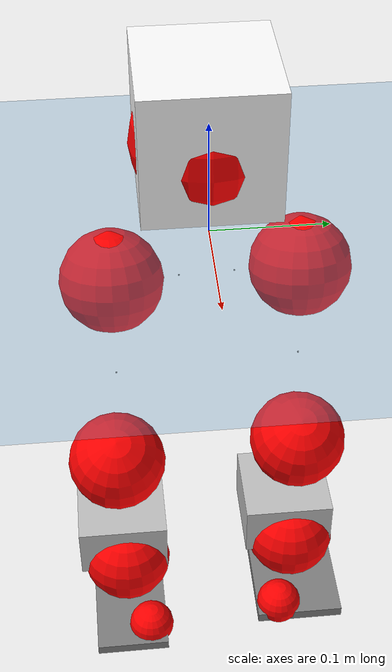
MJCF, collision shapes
<mujoco model="pi_12dof_release_v1">
  <compiler angle="radian" assetdir="assets" balanceinertia="true" inertiafromgeom="false"/>

  <option timestep="0.005" density="1.2" viscosity="2e-05"/>

  <size nkey="1"/>

  <visual>
    <quality shadowsize="8192"/>
    <map shadowclip="0.5"/>
  </visual>

  <default>
    <default class="/">
      <joint armature="0.01" damping="0.01" frictionloss="0.01"/>
      <geom contype="0" conaffinity="0" group="1" solref="-1000 -80"/>
      <site size="0.01 0.005 0.005" group="5"/>
      <general forcelimited="true" biastype="affine" gainprm="20" biasprm="0 -20 -0.5"/>
      <default class="foot">
        <geom size="0.0845 0.036 0.005" type="box" condim="6" group="4" priority="1" friction="0.9 0.2 0.2" solimp="0.015 1 0.005"/>
      </default>
      <default class="reward_collision_sphere">
        <geom group="5" rgba="1 0 0 1"/>
      </default>
    </default>
  </default>

  <asset>
    <texture type="skybox" colorspace="auto" name="//unnamed_texture_0" builtin="gradient" rgb1="0.95 0.95 0.95" rgb2="0.95 0.95 0.95" width="100" height="600"/>
    <texture type="2d" colorspace="auto" name="texplane" builtin="checker" rgb1="0.345 0.575 0.748" rgb2="0.345 0.575 0.748" markrgb="1 1 1" width="512" height="512"/>
    <material name="MatPlane" class="/" texture="texplane" texuniform="true" texrepeat="2 2" specular="0.9"/>
    <mesh name="baselink_1" class="/" file="baselink_1.STL"/>
    <mesh name="r_hip_pitch_link" class="/" file="r_hip_pitch_link.STL"/>
    <mesh name="r_hip_roll_link" class="/" file="r_hip_roll_link.STL"/>
    <mesh name="r_thigh_link" class="/" file="r_thigh_link.STL"/>
    <mesh name="r_calf_link" class="/" file="r_calf_link.STL"/>
    <mesh name="r_ankle_pitch_link" class="/" file="r_ankle_pitch_link.STL"/>
    <mesh name="r_ankle_roll_link" class="/" file="r_ankle_roll_link.STL"/>
    <mesh name="l_hip_pitch_link" class="/" file="l_hip_pitch_link.STL"/>
    <mesh name="l_hip_roll_link" class="/" file="l_hip_roll_link.STL"/>
    <mesh name="l_thigh_link" class="/" file="l_thigh_link.STL"/>
    <mesh name="l_calf_link" class="/" file="l_calf_link.STL"/>
    <mesh name="l_ankle_pitch_link" class="/" file="l_ankle_pitch_link.STL"/>
    <mesh name="l_ankle_roll_link" class="/" file="l_ankle_roll_link.STL"/>
  </asset>

  <worldbody>
    <geom name="floor" class="/" size="100 100 0.125" type="plane" group="0" material="MatPlane"/>
    <light name="toplight_shadow" class="/" pos="0 0 5" dir="0.0990148 0.0990148 -0.990148" type="directional" ambient="0.04 0.04 0.04" diffuse="0.55 0.55 0.55" specular="0.12 0.12 0.12"/>
    <light name="toplight_fill" class="/" pos="0 0 5" dir="0.0990148 0.0990148 -0.990148" type="directional" castshadow="false" ambient="0.04 0.04 0.04" diffuse="0.3 0.3 0.3" specular="0.08 0.08 0.08"/>
    <body name="trunk" pos="-0.000514927 -0.00236944 -0.000964257" quat="1 2.79129e-05 2.52123e-05 -5.33002e-05">
      <inertial pos="0.0043227 -0.00220795 0.0504129" quat="0.695298 0.00887791 0.00893636 0.718611" mass="2.82436" diaginertia="0.0113936 0.00872855 0.0128829"/>
      <joint name="//unnamed_joint_0" type="free"/>
      <geom name="//unnamed_geom_1" class="/" type="mesh" density="0" rgba="1 1 1 1" mesh="baselink_1"/>
      <geom name="//unnamed_geom_2" class="/" size="0.0548437 0.0548437 0.0548437" pos="0 0 0.100342" type="box" rgba="1 1 1 1"/>
      <geom name="//unnamed_geom_3" class="reward_collision_sphere" size="0.0603281" pos="0 0 0.0877988"/>
      <site name="imu" class="/" pos="0.0124033 0.0141155 -0.0118767" size="0.0109687"/>
      <camera name="track" class="/" pos="0 -1.99705 0" quat="0.707107 0.707107 0 0" mode="trackcom"/>
      <camera name="ego_camera" class="/" pos="0.0778373 0 0.225768" quat="-0.5 -0.5 0.5 0.5"/>
      <body name="r_hip_pitch_link" pos="0.00304633 -0.0230246 -0.0405617" quat="0.992101 -0.000723573 -0.125442 -0.000185352">
        <inertial pos="0.00167961 -0.0564277 0.00287146" quat="-0.0152509 0.707292 -0.0290041 0.706161" mass="0.476331" diaginertia="0.000130654 9.44818e-05 0.000255896"/>
        <joint name="r_hip_pitch_joint" class="/" pos="0 0 0" axis="0.00673341 -0.999977 0.000183034" range="-1.73798 1.1927" armature="0.010779" damping="0.0185378" frictionloss="0.0104353"/>
        <geom name="//unnamed_geom_4" class="/" type="mesh" density="0" rgba="0.75294 0.75294 0.75294 1" mesh="r_hip_pitch_link"/>
        <geom name="//unnamed_geom_5" class="/" size="0.000548437 0.000548437 0.000548437" type="box" rgba="0.75294 0.75294 0.75294 1"/>
        <body name="r_hip_roll_link" pos="0.000181298 -0.0564486 -0.00126507" quat="0.999999 -0.00100703 0.000644008 -0.000566335">
          <inertial pos="0.00110388 0.00298405 -0.0760557" quat="0.699784 -0.0778024 -0.083129 0.705223" mass="0.512188" diaginertia="0.000393141 0.000272209 0.000386205"/>
          <joint name="r_hip_roll_joint" class="/" pos="0 0 0" axis="-0.999901 0.0100214 0.00987347" range="-0.11685 0.539104" armature="0.00936066" damping="0.025745" frictionloss="0.0115289"/>
          <geom name="//unnamed_geom_6" class="/" type="mesh" density="0" rgba="0.75294 0.75294 0.75294 1" mesh="r_hip_roll_link"/>
          <geom name="//unnamed_geom_7" class="/" size="0.000548437 0.000548437 0.000548437" type="box" rgba="0.75294 0.75294 0.75294 1"/>
          <geom name="//unnamed_geom_8" class="reward_collision_sphere" size="0.043875"/>
          <body name="r_thigh_link" pos="-0.00186136 -0.00101118 -0.088304" quat="0.999999 0.000283306 -0.000391264 0.00133401">
            <inertial pos="0.00306856 0.000790529 -0.0599573" quat="0.738039 0.674754 0.00228376 1.15966e-05" mass="0.150897" diaginertia="0.000146785 9.56118e-05 0.000179367"/>
            <joint name="r_thigh_joint" class="/" pos="0 0 0" axis="0.000614063 -0.00441817 -0.99999" range="-0.354804 0.595146" armature="0.00957709" damping="0.00146661" frictionloss="0.0110848"/>
            <geom name="//unnamed_geom_9" class="/" type="mesh" density="0" rgba="0.75294 0.75294 0.75294 1" mesh="r_thigh_link"/>
            <geom name="//unnamed_geom_10" class="/" size="0.000548437 0.000548437 0.000548437" type="box" rgba="0.75294 0.75294 0.75294 1"/>
            <body name="r_calf_link" pos="0.00120694 -0.00448985 -0.0901033" quat="0.947725 0.000170221 0.319088 5.92105e-05">
              <inertial pos="-0.00283886 -8.22478e-05 -0.0867635" quat="0.99999 -0.00217007 -0.00354702 0.00145589" mass="1.03787" diaginertia="0.00410215 0.00343766 0.000550096"/>
              <joint name="r_calf_joint" class="/" pos="0 0 0" axis="-0.00839457 -0.999916 -0.0098302" range="-1.65273 0.703499" armature="0.01042" damping="0.0118783" frictionloss="0.0124633"/>
              <geom name="//unnamed_geom_11" class="/" type="mesh" density="0" rgba="0.75294 0.75294 0.75294 1" mesh="r_calf_link"/>
              <geom name="//unnamed_geom_12" class="/" size="0.000548437 0.000548437 0.000548437" type="box" rgba="0.75294 0.75294 0.75294 1"/>
              <geom name="//unnamed_geom_13" class="reward_collision_sphere" size="0.043875"/>
              <body name="r_ankle_pitch_link" pos="0.00160589 0.000249257 -0.172317" quat="0.979852 0.000344291 -0.199722 0.000549345">
                <inertial pos="0.00222505 0.00335006 0.000862099" quat="-0.00991596 0.707525 -0.00942667 0.706556" mass="0.245954" diaginertia="0.000375113 0.00022574 0.000370728"/>
                <joint name="r_ankle_pitch_joint" class="/" pos="0 0 0" axis="0.000274041 -0.999988 -0.00489053" range="-1.24267 0.522294" armature="0.0104927" damping="0.0222952" frictionloss="0.00980172"/>
                <geom name="//unnamed_geom_14" class="/" type="mesh" density="0" rgba="0.75294 0.75294 0.75294 1" mesh="r_ankle_pitch_link"/>
                <geom name="//unnamed_geom_15" class="/" size="0.0427781 0.043875 0.0274218" type="box" rgba="0.75294 0.75294 0.75294 1"/>
                <body name="r_ankle_roll_link" pos="0.0786319 0.00297188 -0.00232925" quat="1 0.000787543 0.000270831 0.000293116">
                  <inertial pos="-0.0221733 0.000561714 -0.0155268" quat="0.560545 0.423863 0.445637 0.55456" mass="0.677859" diaginertia="0.00137756 0.00103025 0.00090054"/>
                  <joint name="r_ankle_roll_joint" class="/" pos="0 0 0" axis="-1 -0.000196289 1.04668e-05" stiffness="0.00725091" range="-0.160939 0.155313" armature="0.0108073" damping="0" frictionloss="0.00945505"/>
                  <geom name="//unnamed_geom_16" class="/" type="mesh" density="0" rgba="0.75294 0.75294 0.75294 1" mesh="r_ankle_roll_link"/>
                  <geom name="//unnamed_geom_17" class="/" type="mesh" rgba="0.75294 0.75294 0.75294 1" mesh="r_ankle_roll_link"/>
                  <geom name="right_foot" class="foot" size="0.0934753 0.0349705 0.0050095" pos="-0.0529293 0 -0.0551878"/>
                  <geom name="//unnamed_geom_19" class="reward_collision_sphere" size="0.043875" pos="-0.0518915 0 -0.0250854"/>
                  <geom name="//unnamed_geom_20" class="reward_collision_sphere" size="0.0219375" pos="0.0155675 0.0199705 -0.0501708"/>
                  <geom name="//unnamed_geom_21" class="reward_collision_sphere" size="0.0219375" pos="-0.12454 0.0199705 -0.0501708"/>
                  <site name="right_foot" class="foot" pos="-0.0529293 0 -0.0551878" size="0.0109687"/>
                </body>
              </body>
            </body>
          </body>
        </body>
      </body>
      <body name="l_hip_pitch_link" pos="0.000232945 0.023791 -0.0412186" quat="0.992174 0.000934624 -0.124861 0.000184698">
        <inertial pos="0.00122215 0.0521202 0.00256298" quat="-0.034702 0.709993 0.0283018 0.702784" mass="0.539761" diaginertia="0.000159898 0.000107704 0.00032028"/>
        <joint name="l_hip_pitch_joint" class="/" pos="0 0 0" axis="-0.000182626 0.999999 0.00157814" stiffness="0.00537483" range="-1.23846 1.74948" armature="0.0113734" damping="0.00219081" frictionloss="0.0124718"/>
        <geom name="//unnamed_geom_22" class="/" type="mesh" density="0" rgba="0.75294 0.75294 0.75294 1" mesh="l_hip_pitch_link"/>
        <geom name="//unnamed_geom_23" class="/" size="0.000548437 0.000548437 0.000548437" type="box" rgba="0.75294 0.75294 0.75294 1"/>
        <body name="l_hip_roll_link" pos="-0.00320286 0.0564694 -0.000140901" quat="1 -0.000213025 -1.99635e-05 -2.09531e-05">
          <inertial pos="-0.00299253 0.000898169 -0.0771763" quat="0.697129 -0.0832625 -0.0667827 0.708956" mass="0.526465" diaginertia="0.00040605 0.000291586 0.000414594"/>
          <joint name="l_hip_roll_joint" class="/" pos="0 0 0" axis="-0.999942 0.00547148 0.00923139" range="-0.520903 0.103937" armature="0.012123" damping="0.00426043" frictionloss="0.0121552"/>
          <geom name="//unnamed_geom_24" class="/" type="mesh" density="0" rgba="0.75294 0.75294 0.75294 1" mesh="l_hip_roll_link"/>
          <geom name="//unnamed_geom_25" class="/" size="0.000548437 0.000548437 0.000548437" type="box" rgba="0.75294 0.75294 0.75294 1"/>
          <geom name="//unnamed_geom_26" class="reward_collision_sphere" size="0.043875"/>
          <body name="l_thigh_link" pos="-0.00337265 -0.000258529 -0.0854173" quat="1 0.000331329 -2.54333e-05 -9.73099e-05">
            <inertial pos="0.000810351 -0.00187674 -0.0603037" quat="0.677872 0.735172 0.00181457 0.00291654" mass="0.159424" diaginertia="0.000159163 9.84686e-05 0.000185822"/>
            <joint name="l_thigh_joint" class="/" pos="0 0 0" axis="0.00041524 -0.00121347 -0.999999" range="-0.610041 0.299564" armature="0.00940847" damping="0.0116982" frictionloss="0.0109509"/>
            <geom name="//unnamed_geom_27" class="/" type="mesh" density="0" rgba="0.75294 0.75294 0.75294 1" mesh="l_thigh_link"/>
            <geom name="//unnamed_geom_28" class="/" size="0.000548437 0.000548437 0.000548437" type="box" rgba="0.75294 0.75294 0.75294 1"/>
            <body name="l_calf_link" pos="0.000438291 0.00025538 -0.0902868" quat="0.947663 -0.000830855 0.31927 -0.000361957">
              <inertial pos="0.00185068 0.00542517 -0.0904239" quat="0.999988 0.00451583 -0.00177678 0.000485165" mass="1.09952" diaginertia="0.0045245 0.00369369 0.000569357"/>
              <joint name="l_calf_joint" class="/" pos="0 0 0" axis="0.0109198 0.999863 -0.0124371" range="-0.635435 1.60726" armature="0.0117895" damping="0.0137793" frictionloss="0.0120614"/>
              <geom name="//unnamed_geom_29" class="/" type="mesh" density="0" rgba="0.75294 0.75294 0.75294 1" mesh="l_calf_link"/>
              <geom name="//unnamed_geom_30" class="/" size="0.000548437 0.000548437 0.000548437" type="box" rgba="0.75294 0.75294 0.75294 1"/>
              <geom name="//unnamed_geom_31" class="reward_collision_sphere" size="0.043875"/>
              <body name="l_ankle_pitch_link" pos="0.0004252 0.00345582 -0.174386" quat="0.979956 0.000411475 -0.199215 -0.000128494">
                <inertial pos="0.00531764 -0.00246788 0.00284757" quat="-0.0027072 0.706184 -0.000405703 0.708023" mass="0.221415" diaginertia="0.000352914 0.000210659 0.000358128"/>
                <joint name="l_ankle_pitch_joint" class="/" pos="0 0 0" axis="-0.00124164 0.999999 0.000793059" range="-0.550456 1.36015" armature="0.0105141" damping="0.0125168" frictionloss="0.0108917"/>
                <geom name="//unnamed_geom_32" class="/" type="mesh" density="0" rgba="0.75294 0.75294 0.75294 1" mesh="l_ankle_pitch_link"/>
                <geom name="//unnamed_geom_33" class="/" size="0.0427781 0.043875 0.0274218" type="box" rgba="0.75294 0.75294 0.75294 1"/>
                <body name="l_ankle_roll_link" pos="0.0785444 0.0036557 0.00138909" quat="0.999999 -0.00012116 -0.0013098 -0.000249169">
                  <inertial pos="-0.0247797 -8.90575e-05 -0.0199295" quat="0.568196 0.429383 0.427147 0.557073" mass="0.694127" diaginertia="0.00138668 0.00100589 0.000884978"/>
                  <joint name="l_ankle_roll_joint" class="/" pos="0 0 0" axis="-0.999999 -0.00123599 0.000536907" range="-0.143764 0.103318" armature="0.0115243" damping="0.0153571" frictionloss="0.00994171"/>
                  <geom name="//unnamed_geom_34" class="/" type="mesh" density="0" rgba="0.75294 0.75294 0.75294 1" mesh="l_ankle_roll_link"/>
                  <geom name="//unnamed_geom_35" class="/" type="mesh" rgba="0.75294 0.75294 0.75294 1" mesh="l_ankle_roll_link"/>
                  <geom name="left_foot" class="foot" size="0.0849203 0.0422696 0.00532672" pos="-0.0529293 0 -0.0551878"/>
                  <geom name="//unnamed_geom_37" class="reward_collision_sphere" size="0.043875" pos="-0.0518915 0 -0.0250854"/>
                  <geom name="//unnamed_geom_38" class="reward_collision_sphere" size="0.0219375" pos="0.0155675 -0.0199705 -0.0501708"/>
                  <geom name="//unnamed_geom_39" class="reward_collision_sphere" size="0.0219375" pos="-0.12454 -0.0199705 -0.0501708"/>
                  <site name="left_foot" class="foot" pos="-0.0529293 0 -0.0551878" size="0.0109687"/>
                </body>
              </body>
            </body>
          </body>
        </body>
      </body>
    </body>
  </worldbody>

  <contact>
    <pair class="/" geom1="floor" geom2="right_foot" name="//unnamed_contact_1"/>
    <pair class="/" geom1="floor" geom2="left_foot" name="//unnamed_contact_0"/>
  </contact>

  <actuator>
    <general name="r_hip_pitch_joint" class="/" joint="r_hip_pitch_joint" forcerange="-22.0752 22.0752" gainprm="20.4296" biasprm="0 -20.4296 -0.537716"/>
    <general name="r_hip_roll_joint" class="/" joint="r_hip_roll_joint" forcerange="-23.0629 23.0629" gainprm="20.4296" biasprm="0 -20.4296 -0.537716"/>
    <general name="r_thigh_joint" class="/" joint="r_thigh_joint" forcerange="-25.4412 25.4412" gainprm="20.4296" biasprm="0 -20.4296 -0.537716"/>
    <general name="r_calf_joint" class="/" joint="r_calf_joint" forcerange="-21.606 21.606" gainprm="20.4296" biasprm="0 -20.4296 -0.537716"/>
    <general name="r_ankle_pitch_joint" class="/" joint="r_ankle_pitch_joint" forcerange="-23.9681 23.9681" gainprm="20.4296" biasprm="0 -20.4296 -0.537716"/>
    <general name="r_ankle_roll_joint" class="/" joint="r_ankle_roll_joint" forcerange="-23.941 23.941" gainprm="20.4296" biasprm="0 -20.4296 -0.537716"/>
    <general name="l_hip_pitch_joint" class="/" joint="l_hip_pitch_joint" forcerange="-23 23" gainprm="20.4296" biasprm="0 -20.4296 -0.537716"/>
    <general name="l_hip_roll_joint" class="/" joint="l_hip_roll_joint" forcerange="-20.7051 20.7051" gainprm="20.4296" biasprm="0 -20.4296 -0.537716"/>
    <general name="l_thigh_joint" class="/" joint="l_thigh_joint" forcerange="-21.5984 21.5984" gainprm="20.4296" biasprm="0 -20.4296 -0.537716"/>
    <general name="l_calf_joint" class="/" joint="l_calf_joint" forcerange="-23.9255 23.9255" gainprm="20.4296" biasprm="0 -20.4296 -0.537716"/>
    <general name="l_ankle_pitch_joint" class="/" joint="l_ankle_pitch_joint" forcerange="-23.9221 23.9221" gainprm="20.4296" biasprm="0 -20.4296 -0.537716"/>
    <general name="l_ankle_roll_joint" class="/" joint="l_ankle_roll_joint" forcerange="-25.4111 25.4111" gainprm="20.4296" biasprm="0 -20.4296 -0.537716"/>
  </actuator>

  <sensor>
    <gyro site="imu" name="imu_angular_velocity"/>
    <velocimeter site="imu" name="imu_linear_velocity"/>
    <framelinvel objtype="site" objname="left_foot" name="left_foot_global_linear_velocity"/>
    <framelinvel objtype="site" objname="right_foot" name="right_foot_global_linear_velocity"/>
  </sensor>

  <keyframe>
    <key name="home" qpos="0 0 0.291 1 0 0 0 0.4 0 0 -0.8 0.4 0 -0.4 0 0 0.8 -0.4 0"/>
  </keyframe>
</mujoco>
